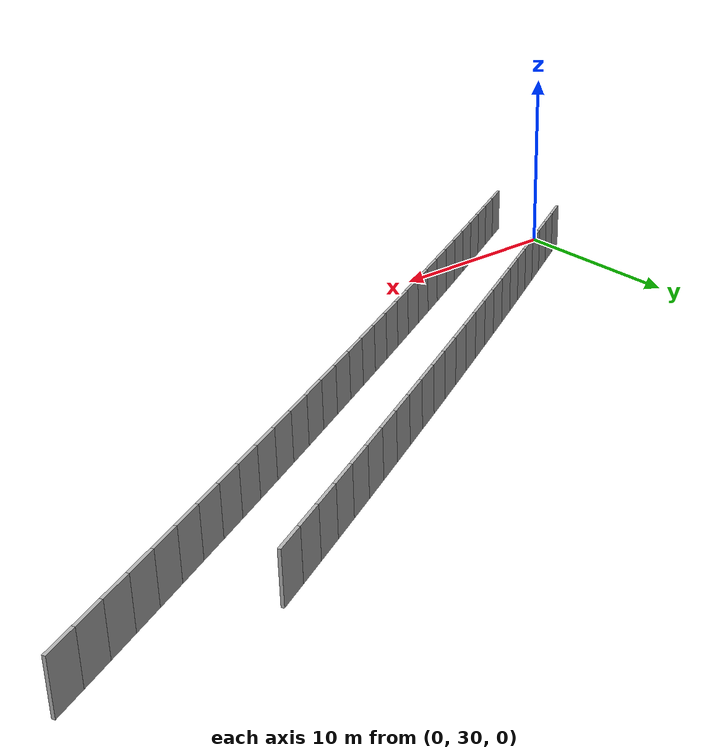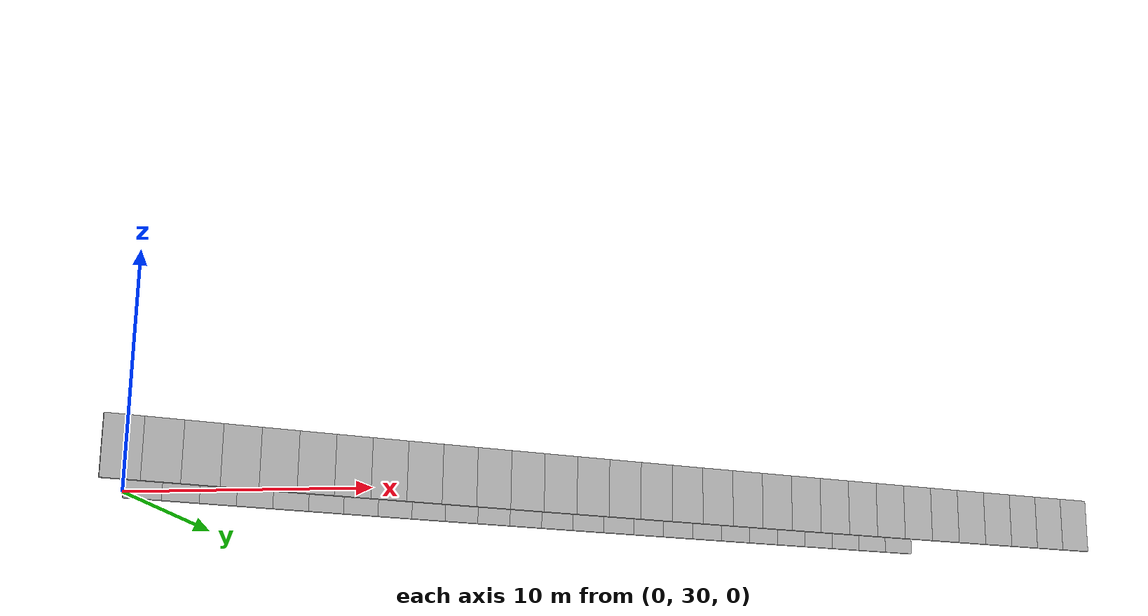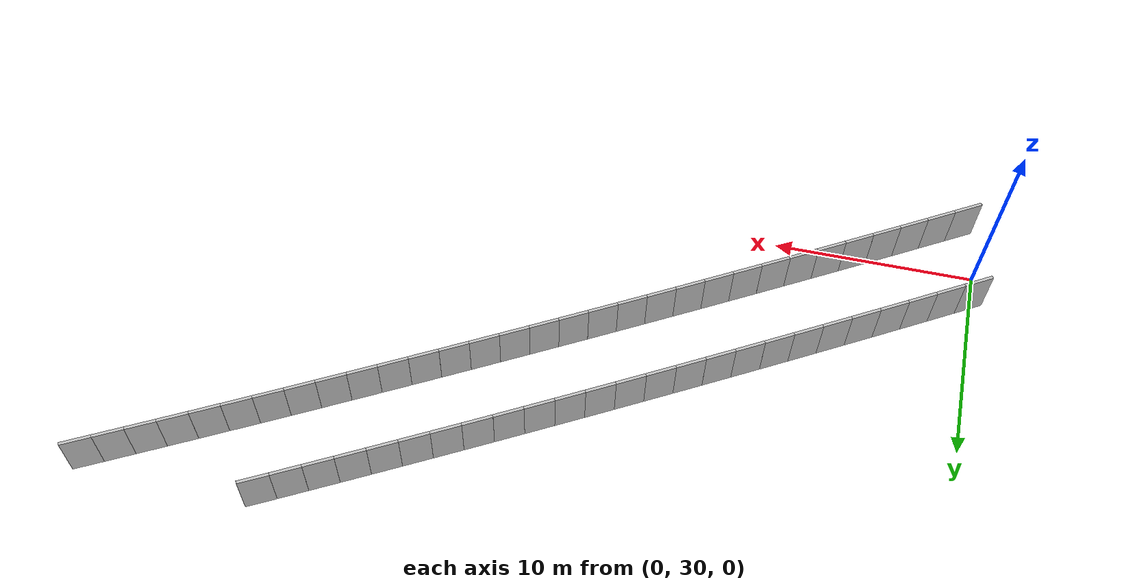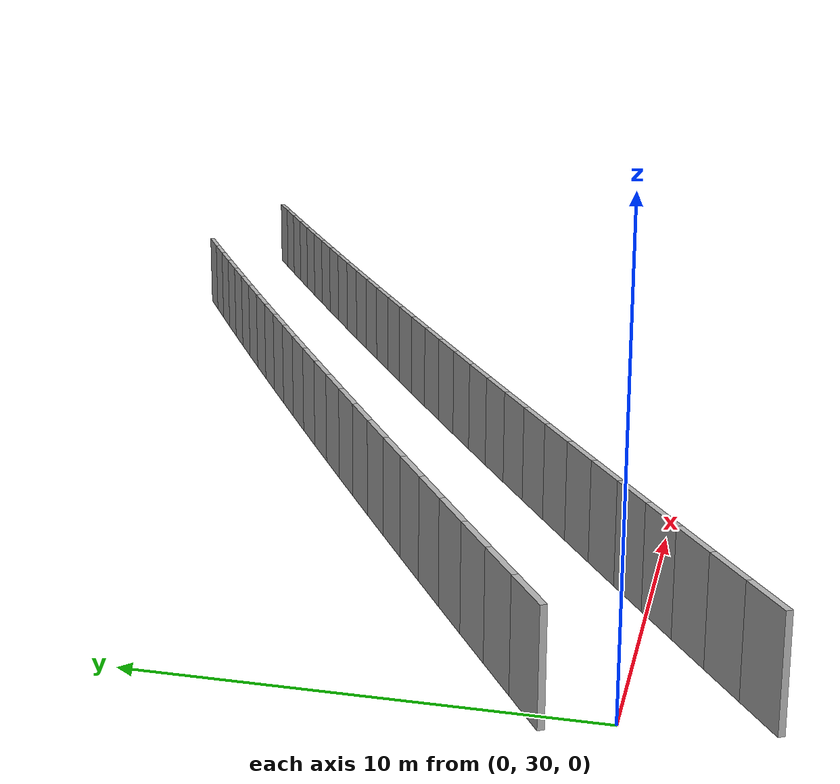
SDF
<?xml version="1.0" ?>
<sdf version="1.6">
  <model name="sps_1444">
    <pose frame="">0 0 0 0 -0 0</pose>
    <static>1</static>
    <self_collide>0</self_collide>
    <allow_auto_disable>0</allow_auto_disable>
    <link name="Wall3171">
      <kinematic>0</kinematic>
      <gravity>1</gravity>
      <self_collide>0</self_collide>
      <collision name="collision">
        <geometry>
          <box>
            <size>1.49633 0.15 2.5</size>
          </box>
        </geometry>
        <pose frame="">0 0 0 0 -0 0</pose>
      </collision>
      <visual name="visual">
        <geometry>
          <box>
            <size>1.49633 0.15 2.5</size>
          </box>
        </geometry>
        <pose frame="">0 0 0 0 -0 0</pose>
        <cast_shadows>1</cast_shadows>
        <transparency>0.0</transparency>
      </visual>
      <pose frame="">40.0873 49.3594 1.25 0 0 -2.65436</pose>
    </link>
    <link name="Wall3172">
      <kinematic>0</kinematic>
      <gravity>1</gravity>
      <self_collide>0</self_collide>
      <collision name="collision">
        <geometry>
          <box>
            <size>1.49648 0.15 2.5</size>
          </box>
        </geometry>
        <pose frame="">0 0 0 0 -0 0</pose>
      </collision>
      <visual name="visual">
        <geometry>
          <box>
            <size>1.49648 0.15 2.5</size>
          </box>
        </geometry>
        <pose frame="">0 0 0 0 -0 0</pose>
        <cast_shadows>1</cast_shadows>
        <transparency>0.0</transparency>
      </visual>
      <pose frame="">38.7656 48.6577 1.25 0 0 -2.6527</pose>
    </link>
    <link name="Wall3173">
      <kinematic>0</kinematic>
      <gravity>1</gravity>
      <self_collide>0</self_collide>
      <collision name="collision">
        <geometry>
          <box>
            <size>1.49649 0.15 2.5</size>
          </box>
        </geometry>
        <pose frame="">0 0 0 0 -0 0</pose>
      </collision>
      <visual name="visual">
        <geometry>
          <box>
            <size>1.49649 0.15 2.5</size>
          </box>
        </geometry>
        <pose frame="">0 0 0 0 -0 0</pose>
        <cast_shadows>1</cast_shadows>
        <transparency>0.0</transparency>
      </visual>
      <pose frame="">37.4451 47.9538 1.25 0 0 -2.65104</pose>
    </link>
    <link name="Wall3174">
      <kinematic>0</kinematic>
      <gravity>1</gravity>
      <self_collide>0</self_collide>
      <collision name="collision">
        <geometry>
          <box>
            <size>1.49663 0.15 2.5</size>
          </box>
        </geometry>
        <pose frame="">0 0 0 0 -0 0</pose>
      </collision>
      <visual name="visual">
        <geometry>
          <box>
            <size>1.49663 0.15 2.5</size>
          </box>
        </geometry>
        <pose frame="">0 0 0 0 -0 0</pose>
        <cast_shadows>1</cast_shadows>
        <transparency>0.0</transparency>
      </visual>
      <pose frame="">36.1255 47.2477 1.25 0 0 -2.64947</pose>
    </link>
    <link name="Wall3175">
      <kinematic>0</kinematic>
      <gravity>1</gravity>
      <self_collide>0</self_collide>
      <collision name="collision">
        <geometry>
          <box>
            <size>1.4964 0.15 2.5</size>
          </box>
        </geometry>
        <pose frame="">0 0 0 0 -0 0</pose>
      </collision>
      <visual name="visual">
        <geometry>
          <box>
            <size>1.4964 0.15 2.5</size>
          </box>
        </geometry>
        <pose frame="">0 0 0 0 -0 0</pose>
        <cast_shadows>1</cast_shadows>
        <transparency>0.0</transparency>
      </visual>
      <pose frame="">34.8072 46.5396 1.25 0 0 -2.64795</pose>
    </link>
    <link name="Wall3176">
      <kinematic>0</kinematic>
      <gravity>1</gravity>
      <self_collide>0</self_collide>
      <collision name="collision">
        <geometry>
          <box>
            <size>1.49644 0.15 2.5</size>
          </box>
        </geometry>
        <pose frame="">0 0 0 0 -0 0</pose>
      </collision>
      <visual name="visual">
        <geometry>
          <box>
            <size>1.49644 0.15 2.5</size>
          </box>
        </geometry>
        <pose frame="">0 0 0 0 -0 0</pose>
        <cast_shadows>1</cast_shadows>
        <transparency>0.0</transparency>
      </visual>
      <pose frame="">33.49 45.8295 1.25 0 0 -2.64635</pose>
    </link>
    <link name="Wall3177">
      <kinematic>0</kinematic>
      <gravity>1</gravity>
      <self_collide>0</self_collide>
      <collision name="collision">
        <geometry>
          <box>
            <size>1.49652 0.15 2.5</size>
          </box>
        </geometry>
        <pose frame="">0 0 0 0 -0 0</pose>
      </collision>
      <visual name="visual">
        <geometry>
          <box>
            <size>1.49652 0.15 2.5</size>
          </box>
        </geometry>
        <pose frame="">0 0 0 0 -0 0</pose>
        <cast_shadows>1</cast_shadows>
        <transparency>0.0</transparency>
      </visual>
      <pose frame="">32.1739 45.1172 1.25 0 0 -2.64471</pose>
    </link>
    <link name="Wall3178">
      <kinematic>0</kinematic>
      <gravity>1</gravity>
      <self_collide>0</self_collide>
      <collision name="collision">
        <geometry>
          <box>
            <size>1.49668 0.15 2.5</size>
          </box>
        </geometry>
        <pose frame="">0 0 0 0 -0 0</pose>
      </collision>
      <visual name="visual">
        <geometry>
          <box>
            <size>1.49668 0.15 2.5</size>
          </box>
        </geometry>
        <pose frame="">0 0 0 0 -0 0</pose>
        <cast_shadows>1</cast_shadows>
        <transparency>0.0</transparency>
      </visual>
      <pose frame="">30.8588 44.4028 1.25 0 0 -2.64323</pose>
    </link>
    <link name="Wall3179">
      <kinematic>0</kinematic>
      <gravity>1</gravity>
      <self_collide>0</self_collide>
      <collision name="collision">
        <geometry>
          <box>
            <size>1.49636 0.15 2.5</size>
          </box>
        </geometry>
        <pose frame="">0 0 0 0 -0 0</pose>
      </collision>
      <visual name="visual">
        <geometry>
          <box>
            <size>1.49636 0.15 2.5</size>
          </box>
        </geometry>
        <pose frame="">0 0 0 0 -0 0</pose>
        <cast_shadows>1</cast_shadows>
        <transparency>0.0</transparency>
      </visual>
      <pose frame="">29.5449 43.6864 1.25 0 0 -2.64158</pose>
    </link>
    <link name="Wall3180">
      <kinematic>0</kinematic>
      <gravity>1</gravity>
      <self_collide>0</self_collide>
      <collision name="collision">
        <geometry>
          <box>
            <size>1.49647 0.15 2.5</size>
          </box>
        </geometry>
        <pose frame="">0 0 0 0 -0 0</pose>
      </collision>
      <visual name="visual">
        <geometry>
          <box>
            <size>1.49647 0.15 2.5</size>
          </box>
        </geometry>
        <pose frame="">0 0 0 0 -0 0</pose>
        <cast_shadows>1</cast_shadows>
        <transparency>0.0</transparency>
      </visual>
      <pose frame="">28.2322 42.968 1.25 0 0 -2.64009</pose>
    </link>
    <link name="Wall3181">
      <kinematic>0</kinematic>
      <gravity>1</gravity>
      <self_collide>0</self_collide>
      <collision name="collision">
        <geometry>
          <box>
            <size>1.4966 0.15 2.5</size>
          </box>
        </geometry>
        <pose frame="">0 0 0 0 -0 0</pose>
      </collision>
      <visual name="visual">
        <geometry>
          <box>
            <size>1.4966 0.15 2.5</size>
          </box>
        </geometry>
        <pose frame="">0 0 0 0 -0 0</pose>
        <cast_shadows>1</cast_shadows>
        <transparency>0.0</transparency>
      </visual>
      <pose frame="">26.9206 42.2474 1.25 0 0 -2.63832</pose>
    </link>
    <link name="Wall3182">
      <kinematic>0</kinematic>
      <gravity>1</gravity>
      <self_collide>0</self_collide>
      <collision name="collision">
        <geometry>
          <box>
            <size>1.49633 0.15 2.5</size>
          </box>
        </geometry>
        <pose frame="">0 0 0 0 -0 0</pose>
      </collision>
      <visual name="visual">
        <geometry>
          <box>
            <size>1.49633 0.15 2.5</size>
          </box>
        </geometry>
        <pose frame="">0 0 0 0 -0 0</pose>
        <cast_shadows>1</cast_shadows>
        <transparency>0.0</transparency>
      </visual>
      <pose frame="">25.6102 41.5247 1.25 0 0 -2.63687</pose>
    </link>
    <link name="Wall3183">
      <kinematic>0</kinematic>
      <gravity>1</gravity>
      <self_collide>0</self_collide>
      <collision name="collision">
        <geometry>
          <box>
            <size>1.49662 0.15 2.5</size>
          </box>
        </geometry>
        <pose frame="">0 0 0 0 -0 0</pose>
      </collision>
      <visual name="visual">
        <geometry>
          <box>
            <size>1.49662 0.15 2.5</size>
          </box>
        </geometry>
        <pose frame="">0 0 0 0 -0 0</pose>
        <cast_shadows>1</cast_shadows>
        <transparency>0.0</transparency>
      </visual>
      <pose frame="">24.3009 40.8 1.25 0 0 -2.63525</pose>
    </link>
    <link name="Wall3184">
      <kinematic>0</kinematic>
      <gravity>1</gravity>
      <self_collide>0</self_collide>
      <collision name="collision">
        <geometry>
          <box>
            <size>1.49651 0.15 2.5</size>
          </box>
        </geometry>
        <pose frame="">0 0 0 0 -0 0</pose>
      </collision>
      <visual name="visual">
        <geometry>
          <box>
            <size>1.49651 0.15 2.5</size>
          </box>
        </geometry>
        <pose frame="">0 0 0 0 -0 0</pose>
        <cast_shadows>1</cast_shadows>
        <transparency>0.0</transparency>
      </visual>
      <pose frame="">22.9926 40.0732 1.25 0 0 -2.63372</pose>
    </link>
    <link name="Wall3185">
      <kinematic>0</kinematic>
      <gravity>1</gravity>
      <self_collide>0</self_collide>
      <collision name="collision">
        <geometry>
          <box>
            <size>1.49651 0.15 2.5</size>
          </box>
        </geometry>
        <pose frame="">0 0 0 0 -0 0</pose>
      </collision>
      <visual name="visual">
        <geometry>
          <box>
            <size>1.49651 0.15 2.5</size>
          </box>
        </geometry>
        <pose frame="">0 0 0 0 -0 0</pose>
        <cast_shadows>1</cast_shadows>
        <transparency>0.0</transparency>
      </visual>
      <pose frame="">21.6856 39.3443 1.25 0 0 -2.63204</pose>
    </link>
    <link name="Wall3186">
      <kinematic>0</kinematic>
      <gravity>1</gravity>
      <self_collide>0</self_collide>
      <collision name="collision">
        <geometry>
          <box>
            <size>1.49662 0.15 2.5</size>
          </box>
        </geometry>
        <pose frame="">0 0 0 0 -0 0</pose>
      </collision>
      <visual name="visual">
        <geometry>
          <box>
            <size>1.49662 0.15 2.5</size>
          </box>
        </geometry>
        <pose frame="">0 0 0 0 -0 0</pose>
        <cast_shadows>1</cast_shadows>
        <transparency>0.0</transparency>
      </visual>
      <pose frame="">20.3798 38.6133 1.25 0 0 -2.63049</pose>
    </link>
    <link name="Wall3187">
      <kinematic>0</kinematic>
      <gravity>1</gravity>
      <self_collide>0</self_collide>
      <collision name="collision">
        <geometry>
          <box>
            <size>1.49628 0.15 2.5</size>
          </box>
        </geometry>
        <pose frame="">0 0 0 0 -0 0</pose>
      </collision>
      <visual name="visual">
        <geometry>
          <box>
            <size>1.49628 0.15 2.5</size>
          </box>
        </geometry>
        <pose frame="">0 0 0 0 -0 0</pose>
        <cast_shadows>1</cast_shadows>
        <transparency>0.0</transparency>
      </visual>
      <pose frame="">19.0751 37.8804 1.25 0 0 -2.62905</pose>
    </link>
    <link name="Wall3188">
      <kinematic>0</kinematic>
      <gravity>1</gravity>
      <self_collide>0</self_collide>
      <collision name="collision">
        <geometry>
          <box>
            <size>1.49649 0.15 2.5</size>
          </box>
        </geometry>
        <pose frame="">0 0 0 0 -0 0</pose>
      </collision>
      <visual name="visual">
        <geometry>
          <box>
            <size>1.49649 0.15 2.5</size>
          </box>
        </geometry>
        <pose frame="">0 0 0 0 -0 0</pose>
        <cast_shadows>1</cast_shadows>
        <transparency>0.0</transparency>
      </visual>
      <pose frame="">17.7716 37.1455 1.25 0 0 -2.6274</pose>
    </link>
    <link name="Wall3189">
      <kinematic>0</kinematic>
      <gravity>1</gravity>
      <self_collide>0</self_collide>
      <collision name="collision">
        <geometry>
          <box>
            <size>1.49653 0.15 2.5</size>
          </box>
        </geometry>
        <pose frame="">0 0 0 0 -0 0</pose>
      </collision>
      <visual name="visual">
        <geometry>
          <box>
            <size>1.49653 0.15 2.5</size>
          </box>
        </geometry>
        <pose frame="">0 0 0 0 -0 0</pose>
        <cast_shadows>1</cast_shadows>
        <transparency>0.0</transparency>
      </visual>
      <pose frame="">16.4692 36.4084 1.25 0 0 -2.62578</pose>
    </link>
    <link name="Wall3190">
      <kinematic>0</kinematic>
      <gravity>1</gravity>
      <self_collide>0</self_collide>
      <collision name="collision">
        <geometry>
          <box>
            <size>1.4965 0.15 2.5</size>
          </box>
        </geometry>
        <pose frame="">0 0 0 0 -0 0</pose>
      </collision>
      <visual name="visual">
        <geometry>
          <box>
            <size>1.4965 0.15 2.5</size>
          </box>
        </geometry>
        <pose frame="">0 0 0 0 -0 0</pose>
        <cast_shadows>1</cast_shadows>
        <transparency>0.0</transparency>
      </visual>
      <pose frame="">15.168 35.6692 1.25 0 0 -2.62417</pose>
    </link>
    <link name="Wall3191">
      <kinematic>0</kinematic>
      <gravity>1</gravity>
      <self_collide>0</self_collide>
      <collision name="collision">
        <geometry>
          <box>
            <size>1.4964 0.15 2.5</size>
          </box>
        </geometry>
        <pose frame="">0 0 0 0 -0 0</pose>
      </collision>
      <visual name="visual">
        <geometry>
          <box>
            <size>1.4964 0.15 2.5</size>
          </box>
        </geometry>
        <pose frame="">0 0 0 0 -0 0</pose>
        <cast_shadows>1</cast_shadows>
        <transparency>0.0</transparency>
      </visual>
      <pose frame="">13.868 34.928 1.25 0 0 -2.62263</pose>
    </link>
    <link name="Wall3192">
      <kinematic>0</kinematic>
      <gravity>1</gravity>
      <self_collide>0</self_collide>
      <collision name="collision">
        <geometry>
          <box>
            <size>1.49649 0.15 2.5</size>
          </box>
        </geometry>
        <pose frame="">0 0 0 0 -0 0</pose>
      </collision>
      <visual name="visual">
        <geometry>
          <box>
            <size>1.49649 0.15 2.5</size>
          </box>
        </geometry>
        <pose frame="">0 0 0 0 -0 0</pose>
        <cast_shadows>1</cast_shadows>
        <transparency>0.0</transparency>
      </visual>
      <pose frame="">12.5692 34.1847 1.25 0 0 -2.62097</pose>
    </link>
    <link name="Wall3193">
      <kinematic>0</kinematic>
      <gravity>1</gravity>
      <self_collide>0</self_collide>
      <collision name="collision">
        <geometry>
          <box>
            <size>1.49659 0.15 2.5</size>
          </box>
        </geometry>
        <pose frame="">0 0 0 0 -0 0</pose>
      </collision>
      <visual name="visual">
        <geometry>
          <box>
            <size>1.49659 0.15 2.5</size>
          </box>
        </geometry>
        <pose frame="">0 0 0 0 -0 0</pose>
        <cast_shadows>1</cast_shadows>
        <transparency>0.0</transparency>
      </visual>
      <pose frame="">11.2715 33.4393 1.25 0 0 -2.61946</pose>
    </link>
    <link name="Wall3194">
      <kinematic>0</kinematic>
      <gravity>1</gravity>
      <self_collide>0</self_collide>
      <collision name="collision">
        <geometry>
          <box>
            <size>1.49653 0.15 2.5</size>
          </box>
        </geometry>
        <pose frame="">0 0 0 0 -0 0</pose>
      </collision>
      <visual name="visual">
        <geometry>
          <box>
            <size>1.49653 0.15 2.5</size>
          </box>
        </geometry>
        <pose frame="">0 0 0 0 -0 0</pose>
        <cast_shadows>1</cast_shadows>
        <transparency>0.0</transparency>
      </visual>
      <pose frame="">9.97497 32.6918 1.25 0 0 -2.61774</pose>
    </link>
    <link name="Wall3195">
      <kinematic>0</kinematic>
      <gravity>1</gravity>
      <self_collide>0</self_collide>
      <collision name="collision">
        <geometry>
          <box>
            <size>1.49639 0.15 2.5</size>
          </box>
        </geometry>
        <pose frame="">0 0 0 0 -0 0</pose>
      </collision>
      <visual name="visual">
        <geometry>
          <box>
            <size>1.49639 0.15 2.5</size>
          </box>
        </geometry>
        <pose frame="">0 0 0 0 -0 0</pose>
        <cast_shadows>1</cast_shadows>
        <transparency>0.0</transparency>
      </visual>
      <pose frame="">8.67974 31.9423 1.25 0 0 -2.61627</pose>
    </link>
    <link name="Wall3196">
      <kinematic>0</kinematic>
      <gravity>1</gravity>
      <self_collide>0</self_collide>
      <collision name="collision">
        <geometry>
          <box>
            <size>1.49659 0.15 2.5</size>
          </box>
        </geometry>
        <pose frame="">0 0 0 0 -0 0</pose>
      </collision>
      <visual name="visual">
        <geometry>
          <box>
            <size>1.49659 0.15 2.5</size>
          </box>
        </geometry>
        <pose frame="">0 0 0 0 -0 0</pose>
        <cast_shadows>1</cast_shadows>
        <transparency>0.0</transparency>
      </visual>
      <pose frame="">7.38564 31.1908 1.25 0 0 -2.61465</pose>
    </link>
    <link name="Wall3197">
      <kinematic>0</kinematic>
      <gravity>1</gravity>
      <self_collide>0</self_collide>
      <collision name="collision">
        <geometry>
          <box>
            <size>1.49627 0.15 2.5</size>
          </box>
        </geometry>
        <pose frame="">0 0 0 0 -0 0</pose>
      </collision>
      <visual name="visual">
        <geometry>
          <box>
            <size>1.49627 0.15 2.5</size>
          </box>
        </geometry>
        <pose frame="">0 0 0 0 -0 0</pose>
        <cast_shadows>1</cast_shadows>
        <transparency>0.0</transparency>
      </visual>
      <pose frame="">6.09277 30.4373 1.25 0 0 -2.61316</pose>
    </link>
    <link name="Wall3198">
      <kinematic>0</kinematic>
      <gravity>1</gravity>
      <self_collide>0</self_collide>
      <collision name="collision">
        <geometry>
          <box>
            <size>1.49663 0.15 2.5</size>
          </box>
        </geometry>
        <pose frame="">0 0 0 0 -0 0</pose>
      </collision>
      <visual name="visual">
        <geometry>
          <box>
            <size>1.49663 0.15 2.5</size>
          </box>
        </geometry>
        <pose frame="">0 0 0 0 -0 0</pose>
        <cast_shadows>1</cast_shadows>
        <transparency>0.0</transparency>
      </visual>
      <pose frame="">4.80108 29.6817 1.25 0 0 -2.61145</pose>
    </link>
    <link name="Wall3199">
      <kinematic>0</kinematic>
      <gravity>1</gravity>
      <self_collide>0</self_collide>
      <collision name="collision">
        <geometry>
          <box>
            <size>1.49656 0.15 2.5</size>
          </box>
        </geometry>
        <pose frame="">0 0 0 0 -0 0</pose>
      </collision>
      <visual name="visual">
        <geometry>
          <box>
            <size>1.49656 0.15 2.5</size>
          </box>
        </geometry>
        <pose frame="">0 0 0 0 -0 0</pose>
        <cast_shadows>1</cast_shadows>
        <transparency>0.0</transparency>
      </visual>
      <pose frame="">3.51046 28.924 1.25 0 0 -2.61001</pose>
    </link>
    <link name="Wall3200">
      <kinematic>0</kinematic>
      <gravity>1</gravity>
      <self_collide>0</self_collide>
      <collision name="collision">
        <geometry>
          <box>
            <size>1.49641 0.15 2.5</size>
          </box>
        </geometry>
        <pose frame="">0 0 0 0 -0 0</pose>
      </collision>
      <visual name="visual">
        <geometry>
          <box>
            <size>1.49641 0.15 2.5</size>
          </box>
        </geometry>
        <pose frame="">0 0 0 0 -0 0</pose>
        <cast_shadows>1</cast_shadows>
        <transparency>0.0</transparency>
      </visual>
      <pose frame="">2.22115 28.1643 1.25 0 0 -2.60825</pose>
    </link>
    <link name="Wall3201">
      <kinematic>0</kinematic>
      <gravity>1</gravity>
      <self_collide>0</self_collide>
      <collision name="collision">
        <geometry>
          <box>
            <size>1.4966 0.15 2.5</size>
          </box>
        </geometry>
        <pose frame="">0 0 0 0 -0 0</pose>
      </collision>
      <visual name="visual">
        <geometry>
          <box>
            <size>1.4966 0.15 2.5</size>
          </box>
        </geometry>
        <pose frame="">0 0 0 0 -0 0</pose>
        <cast_shadows>1</cast_shadows>
        <transparency>0.0</transparency>
      </visual>
      <pose frame="">0.933067 27.4025 1.25 0 0 -2.60675</pose>
    </link>
    <link name="Wall5787">
      <kinematic>0</kinematic>
      <gravity>1</gravity>
      <self_collide>0</self_collide>
      <collision name="collision">
        <geometry>
          <box>
            <size>1.50319 0.15 2.5</size>
          </box>
        </geometry>
        <pose frame="">0 0 0 0 -0 0</pose>
      </collision>
      <visual name="visual">
        <geometry>
          <box>
            <size>1.50319 0.15 2.5</size>
          </box>
        </geometry>
        <pose frame="">0 0 0 0 -0 0</pose>
        <cast_shadows>1</cast_shadows>
        <transparency>0.0</transparency>
      </visual>
      <pose frame="">31.5135 49.4669 1.25 0 0 -2.64633</pose>
    </link>
    <link name="Wall5788">
      <kinematic>0</kinematic>
      <gravity>1</gravity>
      <self_collide>0</self_collide>
      <collision name="collision">
        <geometry>
          <box>
            <size>1.50297 0.15 2.5</size>
          </box>
        </geometry>
        <pose frame="">0 0 0 0 -0 0</pose>
      </collision>
      <visual name="visual">
        <geometry>
          <box>
            <size>1.50297 0.15 2.5</size>
          </box>
        </geometry>
        <pose frame="">0 0 0 0 -0 0</pose>
        <cast_shadows>1</cast_shadows>
        <transparency>0.0</transparency>
      </visual>
      <pose frame="">30.1916 48.7515 1.25 0 0 -2.64472</pose>
    </link>
    <link name="Wall5789">
      <kinematic>0</kinematic>
      <gravity>1</gravity>
      <self_collide>0</self_collide>
      <collision name="collision">
        <geometry>
          <box>
            <size>1.50315 0.15 2.5</size>
          </box>
        </geometry>
        <pose frame="">0 0 0 0 -0 0</pose>
      </collision>
      <visual name="visual">
        <geometry>
          <box>
            <size>1.50315 0.15 2.5</size>
          </box>
        </geometry>
        <pose frame="">0 0 0 0 -0 0</pose>
        <cast_shadows>1</cast_shadows>
        <transparency>0.0</transparency>
      </visual>
      <pose frame="">28.8708 48.0341 1.25 0 0 -2.64331</pose>
    </link>
    <link name="Wall5790">
      <kinematic>0</kinematic>
      <gravity>1</gravity>
      <self_collide>0</self_collide>
      <collision name="collision">
        <geometry>
          <box>
            <size>1.50297 0.15 2.5</size>
          </box>
        </geometry>
        <pose frame="">0 0 0 0 -0 0</pose>
      </collision>
      <visual name="visual">
        <geometry>
          <box>
            <size>1.50297 0.15 2.5</size>
          </box>
        </geometry>
        <pose frame="">0 0 0 0 -0 0</pose>
        <cast_shadows>1</cast_shadows>
        <transparency>0.0</transparency>
      </visual>
      <pose frame="">27.5512 47.3146 1.25 0 0 -2.64158</pose>
    </link>
    <link name="Wall5791">
      <kinematic>0</kinematic>
      <gravity>1</gravity>
      <self_collide>0</self_collide>
      <collision name="collision">
        <geometry>
          <box>
            <size>1.50322 0.15 2.5</size>
          </box>
        </geometry>
        <pose frame="">0 0 0 0 -0 0</pose>
      </collision>
      <visual name="visual">
        <geometry>
          <box>
            <size>1.50322 0.15 2.5</size>
          </box>
        </geometry>
        <pose frame="">0 0 0 0 -0 0</pose>
        <cast_shadows>1</cast_shadows>
        <transparency>0.0</transparency>
      </visual>
      <pose frame="">26.2327 46.5929 1.25 0 0 -2.64</pose>
    </link>
    <link name="Wall5792">
      <kinematic>0</kinematic>
      <gravity>1</gravity>
      <self_collide>0</self_collide>
      <collision name="collision">
        <geometry>
          <box>
            <size>1.50294 0.15 2.5</size>
          </box>
        </geometry>
        <pose frame="">0 0 0 0 -0 0</pose>
      </collision>
      <visual name="visual">
        <geometry>
          <box>
            <size>1.50294 0.15 2.5</size>
          </box>
        </geometry>
        <pose frame="">0 0 0 0 -0 0</pose>
        <cast_shadows>1</cast_shadows>
        <transparency>0.0</transparency>
      </visual>
      <pose frame="">24.9153 45.8691 1.25 0 0 -2.63832</pose>
    </link>
    <link name="Wall5793">
      <kinematic>0</kinematic>
      <gravity>1</gravity>
      <self_collide>0</self_collide>
      <collision name="collision">
        <geometry>
          <box>
            <size>1.50327 0.15 2.5</size>
          </box>
        </geometry>
        <pose frame="">0 0 0 0 -0 0</pose>
      </collision>
      <visual name="visual">
        <geometry>
          <box>
            <size>1.50327 0.15 2.5</size>
          </box>
        </geometry>
        <pose frame="">0 0 0 0 -0 0</pose>
        <cast_shadows>1</cast_shadows>
        <transparency>0.0</transparency>
      </visual>
      <pose frame="">23.5991 45.1432 1.25 0 0 -2.63682</pose>
    </link>
    <link name="Wall5794">
      <kinematic>0</kinematic>
      <gravity>1</gravity>
      <self_collide>0</self_collide>
      <collision name="collision">
        <geometry>
          <box>
            <size>1.50302 0.15 2.5</size>
          </box>
        </geometry>
        <pose frame="">0 0 0 0 -0 0</pose>
      </collision>
      <visual name="visual">
        <geometry>
          <box>
            <size>1.50302 0.15 2.5</size>
          </box>
        </geometry>
        <pose frame="">0 0 0 0 -0 0</pose>
        <cast_shadows>1</cast_shadows>
        <transparency>0.0</transparency>
      </visual>
      <pose frame="">22.284 44.4152 1.25 0 0 -2.6352</pose>
    </link>
    <link name="Wall5795">
      <kinematic>0</kinematic>
      <gravity>1</gravity>
      <self_collide>0</self_collide>
      <collision name="collision">
        <geometry>
          <box>
            <size>1.50312 0.15 2.5</size>
          </box>
        </geometry>
        <pose frame="">0 0 0 0 -0 0</pose>
      </collision>
      <visual name="visual">
        <geometry>
          <box>
            <size>1.50312 0.15 2.5</size>
          </box>
        </geometry>
        <pose frame="">0 0 0 0 -0 0</pose>
        <cast_shadows>1</cast_shadows>
        <transparency>0.0</transparency>
      </visual>
      <pose frame="">20.9701 43.6852 1.25 0 0 -2.63375</pose>
    </link>
    <link name="Wall5796">
      <kinematic>0</kinematic>
      <gravity>1</gravity>
      <self_collide>0</self_collide>
      <collision name="collision">
        <geometry>
          <box>
            <size>1.50297 0.15 2.5</size>
          </box>
        </geometry>
        <pose frame="">0 0 0 0 -0 0</pose>
      </collision>
      <visual name="visual">
        <geometry>
          <box>
            <size>1.50297 0.15 2.5</size>
          </box>
        </geometry>
        <pose frame="">0 0 0 0 -0 0</pose>
        <cast_shadows>1</cast_shadows>
        <transparency>0.0</transparency>
      </visual>
      <pose frame="">19.6573 42.9533 1.25 0 0 -2.63225</pose>
    </link>
    <link name="Wall5797">
      <kinematic>0</kinematic>
      <gravity>1</gravity>
      <self_collide>0</self_collide>
      <collision name="collision">
        <geometry>
          <box>
            <size>1.50313 0.15 2.5</size>
          </box>
        </geometry>
        <pose frame="">0 0 0 0 -0 0</pose>
      </collision>
      <visual name="visual">
        <geometry>
          <box>
            <size>1.50313 0.15 2.5</size>
          </box>
        </geometry>
        <pose frame="">0 0 0 0 -0 0</pose>
        <cast_shadows>1</cast_shadows>
        <transparency>0.0</transparency>
      </visual>
      <pose frame="">18.3458 42.2192 1.25 0 0 -2.6304</pose>
    </link>
    <link name="Wall5798">
      <kinematic>0</kinematic>
      <gravity>1</gravity>
      <self_collide>0</self_collide>
      <collision name="collision">
        <geometry>
          <box>
            <size>1.50304 0.15 2.5</size>
          </box>
        </geometry>
        <pose frame="">0 0 0 0 -0 0</pose>
      </collision>
      <visual name="visual">
        <geometry>
          <box>
            <size>1.50304 0.15 2.5</size>
          </box>
        </geometry>
        <pose frame="">0 0 0 0 -0 0</pose>
        <cast_shadows>1</cast_shadows>
        <transparency>0.0</transparency>
      </visual>
      <pose frame="">17.0354 41.4829 1.25 0 0 -2.62893</pose>
    </link>
    <link name="Wall5799">
      <kinematic>0</kinematic>
      <gravity>1</gravity>
      <self_collide>0</self_collide>
      <collision name="collision">
        <geometry>
          <box>
            <size>1.50303 0.15 2.5</size>
          </box>
        </geometry>
        <pose frame="">0 0 0 0 -0 0</pose>
      </collision>
      <visual name="visual">
        <geometry>
          <box>
            <size>1.50303 0.15 2.5</size>
          </box>
        </geometry>
        <pose frame="">0 0 0 0 -0 0</pose>
        <cast_shadows>1</cast_shadows>
        <transparency>0.0</transparency>
      </visual>
      <pose frame="">15.7262 40.7446 1.25 0 0 -2.62729</pose>
    </link>
    <link name="Wall5800">
      <kinematic>0</kinematic>
      <gravity>1</gravity>
      <self_collide>0</self_collide>
      <collision name="collision">
        <geometry>
          <box>
            <size>1.50317 0.15 2.5</size>
          </box>
        </geometry>
        <pose frame="">0 0 0 0 -0 0</pose>
      </collision>
      <visual name="visual">
        <geometry>
          <box>
            <size>1.50317 0.15 2.5</size>
          </box>
        </geometry>
        <pose frame="">0 0 0 0 -0 0</pose>
        <cast_shadows>1</cast_shadows>
        <transparency>0.0</transparency>
      </visual>
      <pose frame="">14.4181 40.0042 1.25 0 0 -2.62581</pose>
    </link>
    <link name="Wall5801">
      <kinematic>0</kinematic>
      <gravity>1</gravity>
      <self_collide>0</self_collide>
      <collision name="collision">
        <geometry>
          <box>
            <size>1.50295 0.15 2.5</size>
          </box>
        </geometry>
        <pose frame="">0 0 0 0 -0 0</pose>
      </collision>
      <visual name="visual">
        <geometry>
          <box>
            <size>1.50295 0.15 2.5</size>
          </box>
        </geometry>
        <pose frame="">0 0 0 0 -0 0</pose>
        <cast_shadows>1</cast_shadows>
        <transparency>0.0</transparency>
      </visual>
      <pose frame="">13.1111 39.2618 1.25 0 0 -2.62418</pose>
    </link>
    <link name="Wall5802">
      <kinematic>0</kinematic>
      <gravity>1</gravity>
      <self_collide>0</self_collide>
      <collision name="collision">
        <geometry>
          <box>
            <size>1.50297 0.15 2.5</size>
          </box>
        </geometry>
        <pose frame="">0 0 0 0 -0 0</pose>
      </collision>
      <visual name="visual">
        <geometry>
          <box>
            <size>1.50297 0.15 2.5</size>
          </box>
        </geometry>
        <pose frame="">0 0 0 0 -0 0</pose>
        <cast_shadows>1</cast_shadows>
        <transparency>0.0</transparency>
      </visual>
      <pose frame="">11.8055 38.5173 1.25 0 0 -2.62251</pose>
    </link>
    <link name="Wall5803">
      <kinematic>0</kinematic>
      <gravity>1</gravity>
      <self_collide>0</self_collide>
      <collision name="collision">
        <geometry>
          <box>
            <size>1.50329 0.15 2.5</size>
          </box>
        </geometry>
        <pose frame="">0 0 0 0 -0 0</pose>
      </collision>
      <visual name="visual">
        <geometry>
          <box>
            <size>1.50329 0.15 2.5</size>
          </box>
        </geometry>
        <pose frame="">0 0 0 0 -0 0</pose>
        <cast_shadows>1</cast_shadows>
        <transparency>0.0</transparency>
      </visual>
      <pose frame="">10.5009 37.7707 1.25 0 0 -2.62108</pose>
    </link>
    <link name="Wall5804">
      <kinematic>0</kinematic>
      <gravity>1</gravity>
      <self_collide>0</self_collide>
      <collision name="collision">
        <geometry>
          <box>
            <size>1.50304 0.15 2.5</size>
          </box>
        </geometry>
        <pose frame="">0 0 0 0 -0 0</pose>
      </collision>
      <visual name="visual">
        <geometry>
          <box>
            <size>1.50304 0.15 2.5</size>
          </box>
        </geometry>
        <pose frame="">0 0 0 0 -0 0</pose>
        <cast_shadows>1</cast_shadows>
        <transparency>0.0</transparency>
      </visual>
      <pose frame="">9.19744 37.0221 1.25 0 0 -2.61949</pose>
    </link>
    <link name="Wall5805">
      <kinematic>0</kinematic>
      <gravity>1</gravity>
      <self_collide>0</self_collide>
      <collision name="collision">
        <geometry>
          <box>
            <size>1.50308 0.15 2.5</size>
          </box>
        </geometry>
        <pose frame="">0 0 0 0 -0 0</pose>
      </collision>
      <visual name="visual">
        <geometry>
          <box>
            <size>1.50308 0.15 2.5</size>
          </box>
        </geometry>
        <pose frame="">0 0 0 0 -0 0</pose>
        <cast_shadows>1</cast_shadows>
        <transparency>0.0</transparency>
      </visual>
      <pose frame="">7.89526 36.2714 1.25 0 0 -2.61782</pose>
    </link>
    <link name="Wall5806">
      <kinematic>0</kinematic>
      <gravity>1</gravity>
      <self_collide>0</self_collide>
      <collision name="collision">
        <geometry>
          <box>
            <size>1.50296 0.15 2.5</size>
          </box>
        </geometry>
        <pose frame="">0 0 0 0 -0 0</pose>
      </collision>
      <visual name="visual">
        <geometry>
          <box>
            <size>1.50296 0.15 2.5</size>
          </box>
        </geometry>
        <pose frame="">0 0 0 0 -0 0</pose>
        <cast_shadows>1</cast_shadows>
        <transparency>0.0</transparency>
      </visual>
      <pose frame="">6.59435 35.5186 1.25 0 0 -2.61618</pose>
    </link>
    <link name="Wall5807">
      <kinematic>0</kinematic>
      <gravity>1</gravity>
      <self_collide>0</self_collide>
      <collision name="collision">
        <geometry>
          <box>
            <size>1.5032 0.15 2.5</size>
          </box>
        </geometry>
        <pose frame="">0 0 0 0 -0 0</pose>
      </collision>
      <visual name="visual">
        <geometry>
          <box>
            <size>1.5032 0.15 2.5</size>
          </box>
        </geometry>
        <pose frame="">0 0 0 0 -0 0</pose>
        <cast_shadows>1</cast_shadows>
        <transparency>0.0</transparency>
      </visual>
      <pose frame="">5.29455 34.7638 1.25 0 0 -2.61477</pose>
    </link>
    <link name="Wall5808">
      <kinematic>0</kinematic>
      <gravity>1</gravity>
      <self_collide>0</self_collide>
      <collision name="collision">
        <geometry>
          <box>
            <size>1.50309 0.15 2.5</size>
          </box>
        </geometry>
        <pose frame="">0 0 0 0 -0 0</pose>
      </collision>
      <visual name="visual">
        <geometry>
          <box>
            <size>1.50309 0.15 2.5</size>
          </box>
        </geometry>
        <pose frame="">0 0 0 0 -0 0</pose>
        <cast_shadows>1</cast_shadows>
        <transparency>0.0</transparency>
      </visual>
      <pose frame="">3.99587 34.0069 1.25 0 0 -2.61303</pose>
    </link>
    <link name="Wall5809">
      <kinematic>0</kinematic>
      <gravity>1</gravity>
      <self_collide>0</self_collide>
      <collision name="collision">
        <geometry>
          <box>
            <size>1.50311 0.15 2.5</size>
          </box>
        </geometry>
        <pose frame="">0 0 0 0 -0 0</pose>
      </collision>
      <visual name="visual">
        <geometry>
          <box>
            <size>1.50311 0.15 2.5</size>
          </box>
        </geometry>
        <pose frame="">0 0 0 0 -0 0</pose>
        <cast_shadows>1</cast_shadows>
        <transparency>0.0</transparency>
      </visual>
      <pose frame="">2.69848 33.2479 1.25 0 0 -2.61149</pose>
    </link>
    <link name="Wall5810">
      <kinematic>0</kinematic>
      <gravity>1</gravity>
      <self_collide>0</self_collide>
      <collision name="collision">
        <geometry>
          <box>
            <size>1.50317 0.15 2.5</size>
          </box>
        </geometry>
        <pose frame="">0 0 0 0 -0 0</pose>
      </collision>
      <visual name="visual">
        <geometry>
          <box>
            <size>1.50317 0.15 2.5</size>
          </box>
        </geometry>
        <pose frame="">0 0 0 0 -0 0</pose>
        <cast_shadows>1</cast_shadows>
        <transparency>0.0</transparency>
      </visual>
      <pose frame="">1.40227 32.4868 1.25 0 0 -2.60982</pose>
    </link>
    <link name="Wall5811">
      <kinematic>0</kinematic>
      <gravity>1</gravity>
      <self_collide>0</self_collide>
      <collision name="collision">
        <geometry>
          <box>
            <size>1.50307 0.15 2.5</size>
          </box>
        </geometry>
        <pose frame="">0 0 0 0 -0 0</pose>
      </collision>
      <visual name="visual">
        <geometry>
          <box>
            <size>1.50307 0.15 2.5</size>
          </box>
        </geometry>
        <pose frame="">0 0 0 0 -0 0</pose>
        <cast_shadows>1</cast_shadows>
        <transparency>0.0</transparency>
      </visual>
      <pose frame="">0.107261 31.7237 1.25 0 0 -2.60841</pose>
    </link>
  </model>
</sdf>
